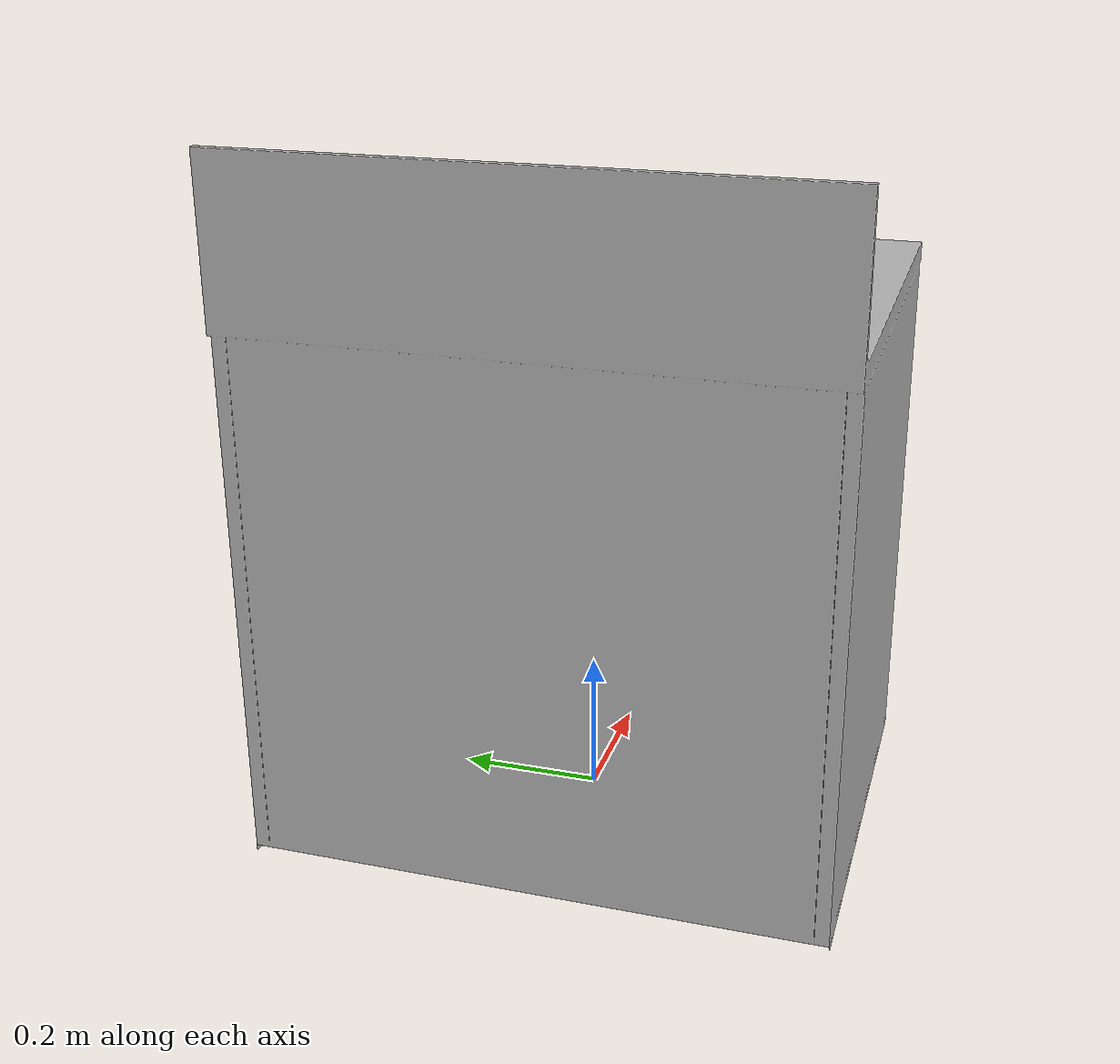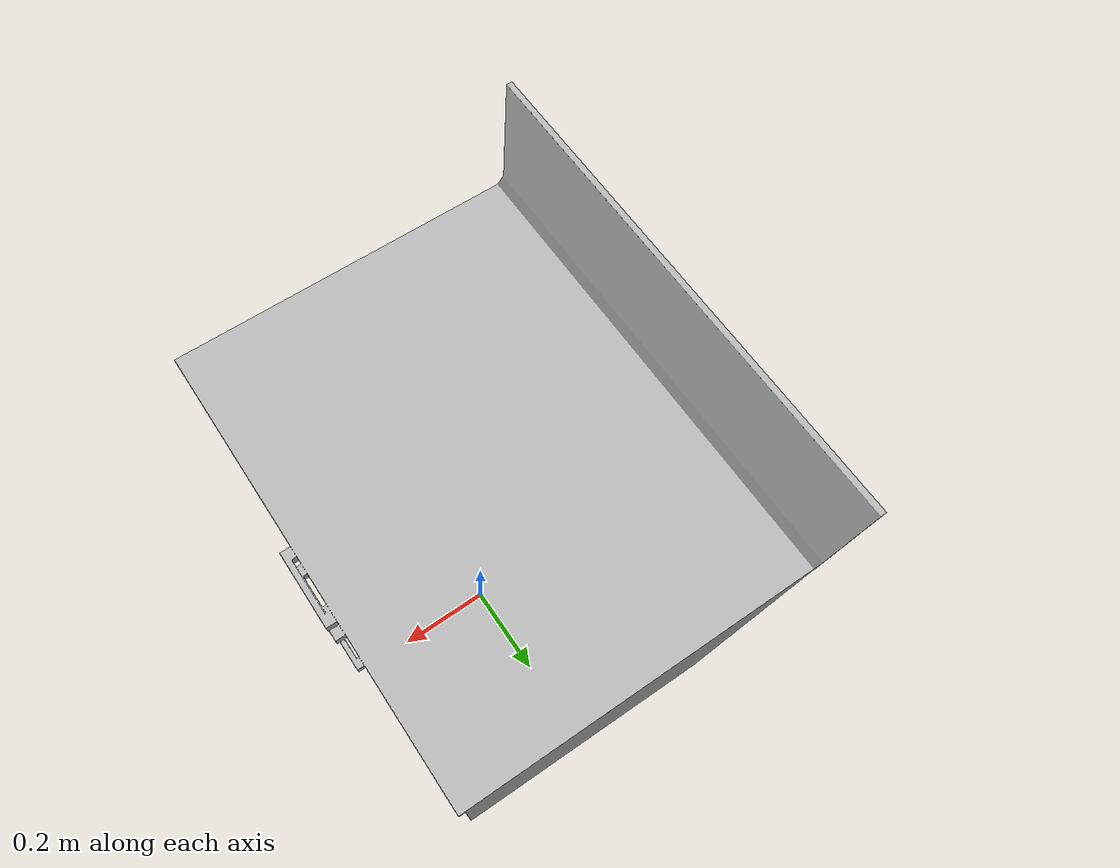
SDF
<?xml version='1.0'?>
<sdf version='1.4'>
  <model name='657'>
    <pose>0 0 0 0 0 0</pose>
    <static>true</static>
    <link name='link'>
      <collision name='collision'>
        <pose>0 0 0 0 0 0</pose>
        <geometry>
          <box>
            <size>0.639997 0.800038 2</size>
          </box>
        </geometry>
      </collision>
      <visual name='visual'>
        <pose>0 0 0 0 0 0</pose>
        <geometry>
          <mesh><uri>model://657/657.dae</uri></mesh>
        </geometry>
      </visual>
    </link>
  </model>
</sdf>
